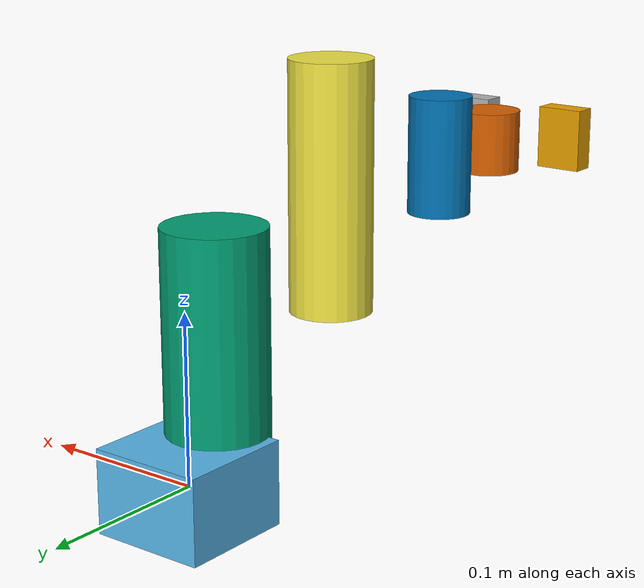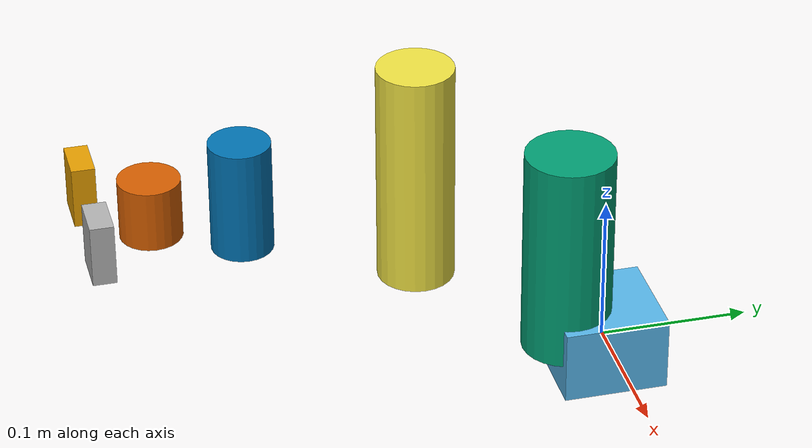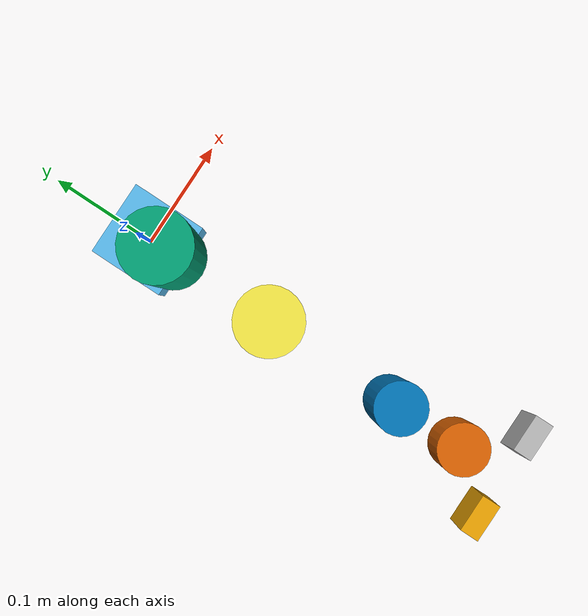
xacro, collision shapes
<?xml version="1.0" ?>
<robot xmlns:xacro="http://www.ros.org/wiki/xacro" name="widow_xl">

  <xacro:include
        filename="$(find autobot_description)/urdf/manipulators/widow_xl.urdf.xacro"
    />

  <!-- Dummy root link — RobotModel grafts this onto the vehicle tree -->
  <link name="widow_xl_base" />

  <xacro:widow_xl prefix="" parent="widow_xl_base">
    <origin xyz="0 0 0" rpy="0 0 0" />
  </xacro:widow_xl>

</robot>

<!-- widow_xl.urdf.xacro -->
<robot xmlns:xacro="http://www.ros.org/wiki/xacro" name="widow_xl">

    <xacro:macro name="widow_xl" params="prefix parent *origin">

        <joint name="${prefix}mount_joint" type="fixed">
            <parent link="${parent}" />
            <child link="${prefix}shoulder_mount" />
            <xacro:insert_block name="origin" />
        </joint>

        <link name="${prefix}shoulder_mount">
            <inertial>
                <mass value="0.2"/>
                <inertia ixx="0.0001" ixy="0.0" ixz="0.0"
                         iyy="0.0001" iyz="0.0" izz="0.0001"/>
            </inertial>
            <visual>
                <geometry>
                    <mesh filename="package://autobot_description/meshes/widow-xl/shoulder_mount.dae"/>
                </geometry>
            </visual>
            <collision>
                <geometry>
                    <box size="0.07 0.07 0.05"/>
                </geometry>
            </collision>
        </link>

        <joint name="${prefix}shoulder_joint" type="revolute">
            <parent link="${prefix}shoulder_mount" />
            <child link="${prefix}shoulder_link" />
            <origin xyz="0.0 0.0 0.0" rpy="0 0 0" />
            <axis xyz="1 0 0" />
            <limit lower="-1.57" upper="1.57" effort="10" velocity="1.0" />
            <dynamics damping="5.0" friction="0.5"/>
        </joint>

        <link name="${prefix}shoulder_link">
            <inertial>
                <mass value="0.3"/>
                <origin xyz="0.0 -0.025 0.07" rpy="0 0 0"/>
                <inertia ixx="0.0005" ixy="0.0" ixz="0.0"
                         iyy="0.0005" iyz="0.0" izz="0.0001"/>
            </inertial>
            <visual>
                <geometry>
                    <mesh filename="package://autobot_description/meshes/widow-xl/shoulder.dae"/>
                </geometry>
            </visual>
            <collision>
                <origin xyz="0.0 -0.025 0.07" rpy="0 0 0"/>
                <geometry>
                    <cylinder radius="0.03" length="0.145"/>
                </geometry>
            </collision>
        </link>

        <joint name="${prefix}forearm_joint" type="revolute">
            <parent link="${prefix}shoulder_link" />
            <child link="${prefix}forearm_link" />
            <origin xyz="0.0 -0.0525 0.145" rpy="0 0 0" />
            <axis xyz="1 0 0" />
            <limit lower="-1.57" upper="1.57" effort="10" velocity="1.0" />
            <dynamics damping="5.0" friction="0.5"/>
        </joint>

        <link name="${prefix}forearm_link">
            <inertial>
                <mass value="0.25"/>
                <origin xyz="0.0 -0.075 0.0" rpy="0 0 0"/>
                <inertia ixx="0.0005" ixy="0.0" ixz="0.0"
                         iyy="0.0001" iyz="0.0" izz="0.0005"/>
            </inertial>
            <visual>
                <geometry>
                    <mesh filename="package://autobot_description/meshes/widow-xl/forearm.dae"/>
                </geometry>
            </visual>
            <collision>
                <origin xyz="0.0 -0.075 0.0" rpy="0 0 0"/>
                <geometry>
                    <cylinder radius="0.025" length="0.15"/>
                </geometry>
            </collision>
        </link>

        <joint name="${prefix}wrist_joint" type="revolute">
            <parent link="${prefix}forearm_link" />
            <child link="${prefix}wrist_link" />
            <origin xyz="0 -0.15 0" rpy="0 0 0" />
            <axis xyz="1 0 0" />
            <limit lower="-1.57" upper="1.57" effort="10" velocity="1.0" />
            <dynamics damping="5.0" friction="0.5"/>
        </joint>

        <link name="${prefix}wrist_link">
            <inertial>
                <mass value="0.15"/>
                <origin xyz="0.0 -0.0375 0.0" rpy="0 0 0"/>
                <inertia ixx="0.0001" ixy="0.0" ixz="0.0"
                         iyy="0.00005" iyz="0.0" izz="0.0001"/>
            </inertial>
            <visual>
                <geometry>
                    <mesh filename="package://autobot_description/meshes/widow-xl/wrist.dae"/>
                </geometry>
            </visual>
            <collision>
                <origin xyz="0.0 -0.0375 0.0" rpy="0 0 0"/>
                <geometry>
                    <cylinder radius="0.02" length="0.075"/>
                </geometry>
            </collision>
        </link>

        <joint name="${prefix}wrist_rotate_joint" type="revolute">
            <parent link="${prefix}wrist_link" />
            <child link="${prefix}wrist_rotate_link" />
            <origin xyz="0 -0.075 0" rpy="0 0 -1.57" />
            <axis xyz="1 0 0" />
            <limit lower="-1.57" upper="1.57" effort="10" velocity="1.0" />
            <dynamics damping="5.0" friction="0.5"/>
        </joint>

        <link name="${prefix}wrist_rotate_link">
            <inertial>
                <mass value="0.1"/>
                <origin xyz="0.02 0.0 0.0" rpy="0 0 0"/>
                <inertia ixx="0.00005" ixy="0.0" ixz="0.0"
                         iyy="0.00005" iyz="0.0" izz="0.00005"/>
            </inertial>
            <visual>
                <geometry>
                    <mesh filename="package://autobot_description/meshes/widow-xl/wrist_rotate.dae"/>
                </geometry>
            </visual>
            <collision>
                <origin xyz="0.02 0.0 0.0" rpy="0 0 0"/>
                <geometry>
                    <cylinder radius="0.02" length="0.04"/>
                </geometry>
            </collision>
        </link>

        <joint name="${prefix}gripper_joint" type="fixed">
            <parent link="${prefix}wrist_rotate_link" />
            <child link="${prefix}gripper_link" />
            <origin xyz="0.0575 0 0" rpy="0 0 0" />
        </joint>

        <!-- gripper_link is massless — mass accounted for in fingers -->
        <link name="${prefix}gripper_link"/>

        <joint name="${prefix}left_finger_joint" type="prismatic">
            <parent link="${prefix}gripper_link" />
            <child link="${prefix}left_finger_link" />
            <origin xyz="0 0.035 0" rpy="0 0 0" />
            <axis xyz="0 -1 0" />
            <limit lower="0.0" upper="0.0325" effort="10" velocity="1.0" />
            <dynamics damping="5.0" friction="0.5"/>
        </joint>

        <link name="${prefix}left_finger_link">
            <inertial>
                <mass value="0.05"/>
                <inertia ixx="0.00001" ixy="0.0" ixz="0.0"
                         iyy="0.00001" iyz="0.0" izz="0.00001"/>
            </inertial>
            <visual>
                <origin xyz="0 0 0" rpy="0 0 1.57" />
                <geometry>
                    <mesh filename="package://autobot_description/meshes/widow-xl/finger.dae"/>
                </geometry>
            </visual>
            <collision>
                <geometry>
                    <box size="0.015 0.03 0.04"/>
                </geometry>
            </collision>
        </link>

        <joint name="${prefix}right_finger_joint" type="prismatic">
            <parent link="${prefix}gripper_link" />
            <child link="${prefix}right_finger_link" />
            <origin xyz="0 -0.035 0" rpy="0 0 0" />
            <axis xyz="0 1 0" />
            <limit lower="0.0" upper="0.0325" effort="10" velocity="1.0" />
            <dynamics damping="5.0" friction="0.5"/>
        </joint>

        <link name="${prefix}right_finger_link">
            <inertial>
                <mass value="0.05"/>
                <inertia ixx="0.00001" ixy="0.0" ixz="0.0"
                         iyy="0.00001" iyz="0.0" izz="0.00001"/>
            </inertial>
            <visual>
                <origin xyz="0 0 0" rpy="3.14159 0 -1.57" />
                <geometry>
                    <mesh filename="package://autobot_description/meshes/widow-xl/finger.dae"/>
                </geometry>
            </visual>
            <collision>
                <geometry>
                    <box size="0.015 0.03 0.04"/>
                </geometry>
            </collision>
        </link>

    </xacro:macro>

</robot>
